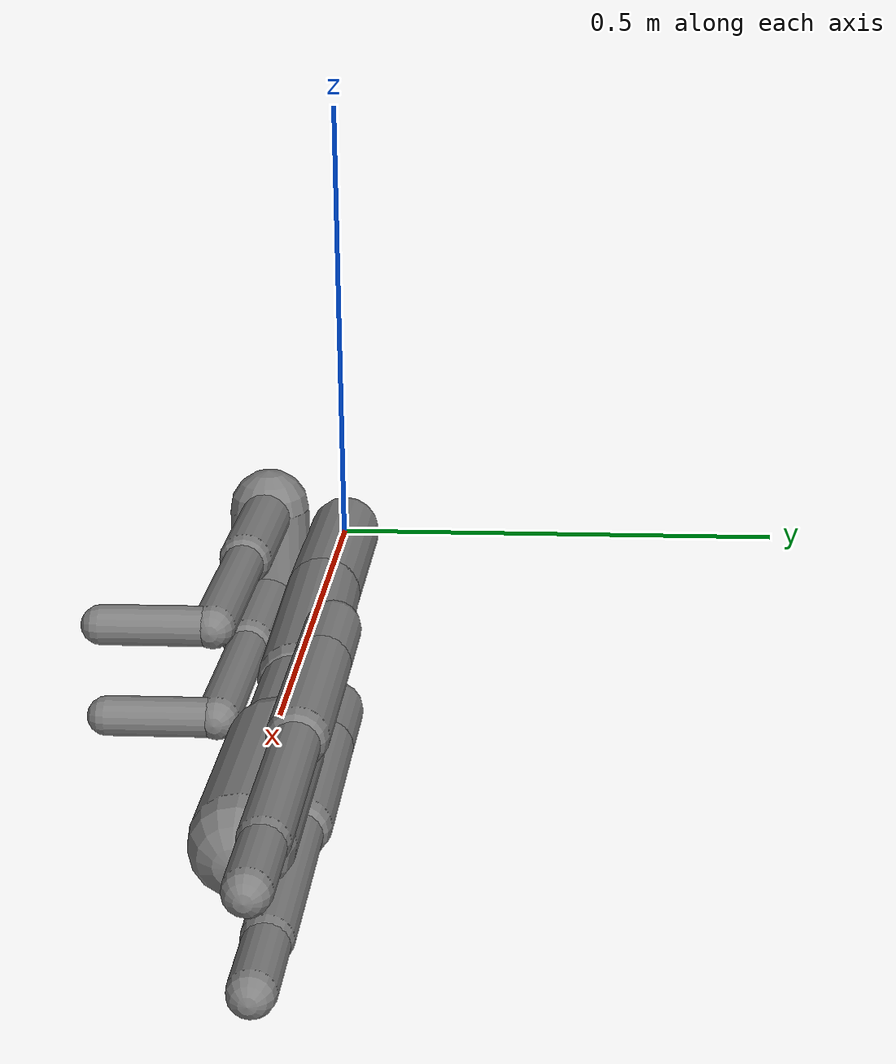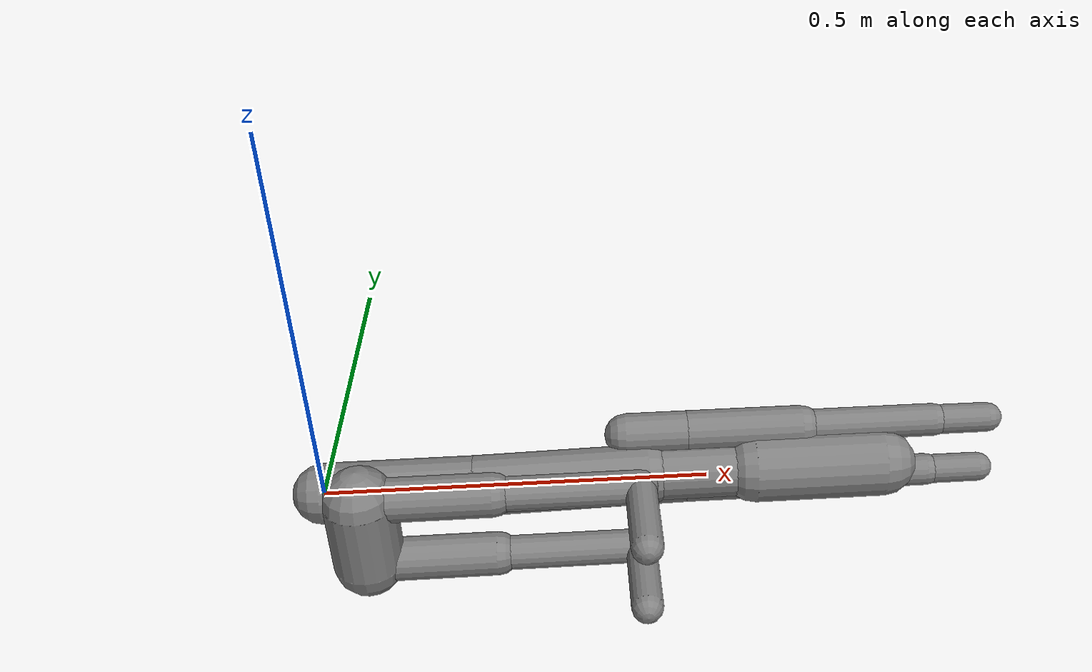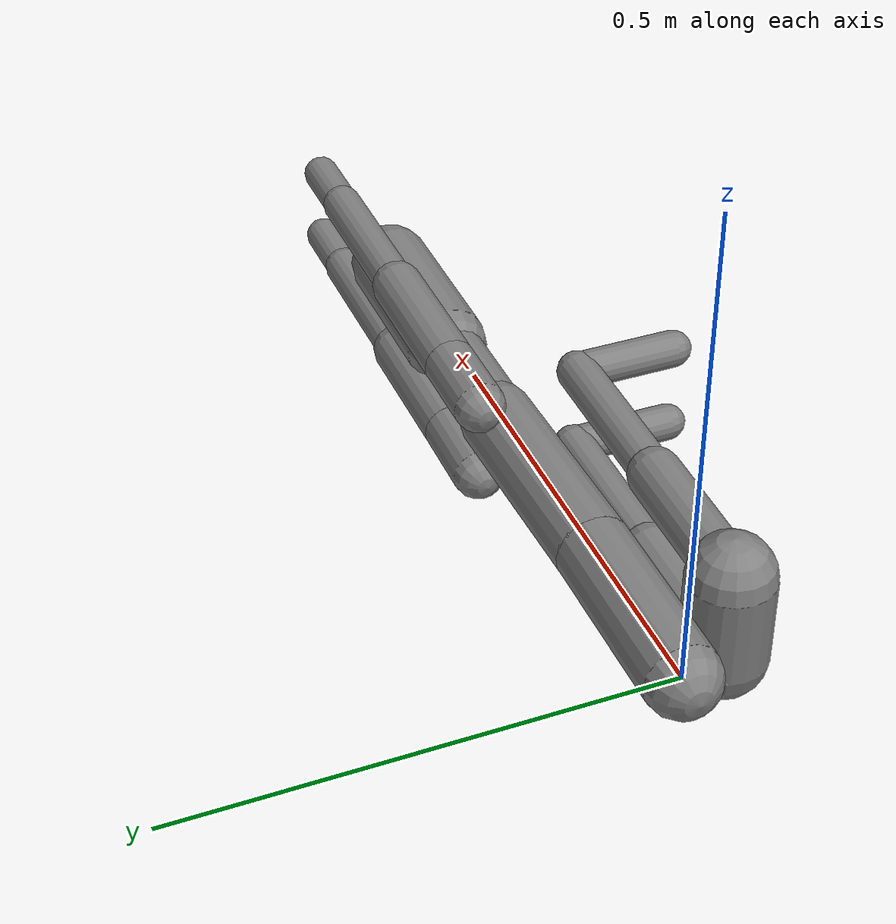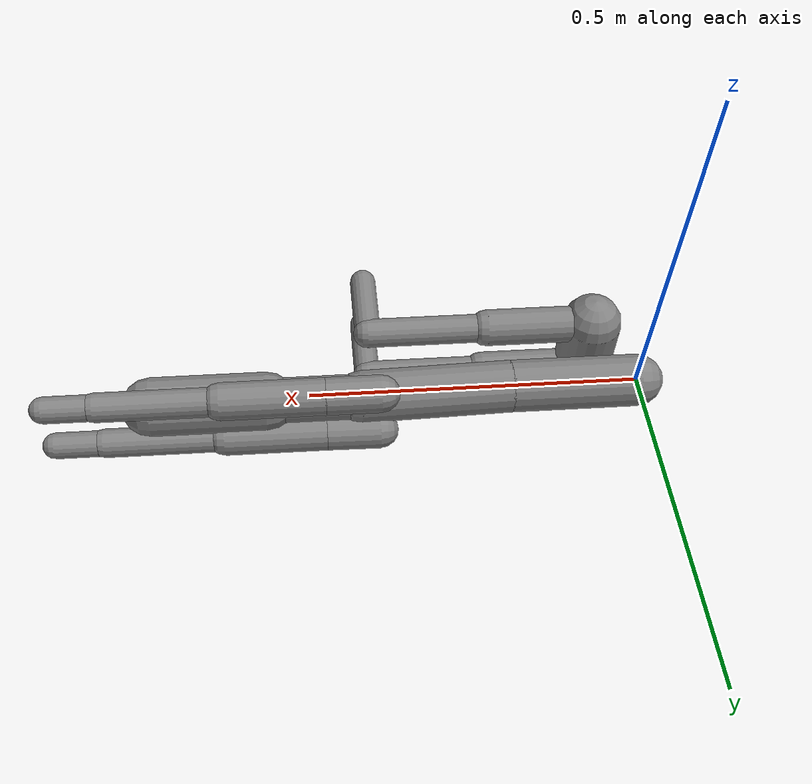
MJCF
<?xml version="1.0" ?>
<mujoco model="dog_v2">
  <compiler angle="degree" autolimits="true"/>
  <option timestep="0.005"/>
  <default>
    <geom contype="1" conaffinity="1" condim="3" density="1000"/>
    <joint limited="true" armature="0.01" damping="0.1"/>
  </default>
  <worldbody>
    <body name="trunk" pos="0 0 0">
      <freejoint name="root"/>
      <geom name="geom_trunk" type="capsule" fromto="0.0609197 -0.0780399 0.0487499 0.0609197 -0.0780397 -0.0487499" size="0.045" group="0"/>
      <body name="Spine" pos="0 0 0">
        <joint name="Spine_x" type="hinge" axis="1 0 0" pos="0 0 0" limited="false"/>
        <joint name="Spine_y" type="hinge" axis="0 1 0" pos="0 0 0" limited="false"/>
        <joint name="Spine_z" type="hinge" axis="0 0 1" pos="0 0 0" limited="false"/>
        <geom name="geom_Spine" type="capsule" fromto="0 0 0 0.19342 0 0" size="0.04" group="0"/>
        <body name="Spine1" pos="0.19342 0 0">
          <joint name="Spine1_x" type="hinge" axis="1 0 0" pos="0 0 0" limited="false"/>
          <joint name="Spine1_y" type="hinge" axis="0 1 0" pos="0 0 0" limited="false"/>
          <joint name="Spine1_z" type="hinge" axis="0 0 1" pos="0 0 0" limited="false"/>
          <geom name="geom_Spine1" type="capsule" fromto="0 0 0 0.22905 0.006108 0" size="0.04" group="0"/>
          <body name="Neck" pos="0.22905 0.006108 0">
            <joint name="Neck_x" type="hinge" axis="1 0 0" pos="0 0 0" limited="false"/>
            <joint name="Neck_y" type="hinge" axis="0 1 0" pos="0 0 0" limited="false"/>
            <joint name="Neck_z" type="hinge" axis="0 0 1" pos="0 0 0" limited="false"/>
            <geom name="geom_Neck" type="capsule" fromto="0 0 0 0.14252 0.000314335 0" size="0.035" group="0"/>
            <body name="Head" pos="0.14252 0.000314335 0">
              <joint name="Head_x" type="hinge" axis="1 0 0" pos="0 0 0" limited="false"/>
              <joint name="Head_y" type="hinge" axis="0 1 0" pos="0 0 0" limited="false"/>
              <joint name="Head_z" type="hinge" axis="0 0 1" pos="0 0 0" limited="false"/>
              <geom name="geom_Head" type="capsule" fromto="0 0 0 0.17306 0 0" size="0.045" group="0"/>
            </body>
          </body>
          <body name="LeftShoulder" pos="0.201564 0.037666 0.043774">
            <joint name="LeftShoulder_x" type="hinge" axis="1 0 0" pos="0 0 0" limited="false"/>
            <joint name="LeftShoulder_y" type="hinge" axis="0 1 0" pos="0 0 0" limited="false"/>
            <joint name="LeftShoulder_z" type="hinge" axis="0 0 1" pos="0 0 0" limited="false"/>
            <geom name="geom_LeftShoulder" type="capsule" fromto="0 0 0 0.08144 0 0" size="0.028" group="0"/>
            <body name="LeftArm" pos="0.08144 0 0">
              <joint name="LeftArm_x" type="hinge" axis="1 0 0" pos="0 0 0" limited="false"/>
              <joint name="LeftArm_y" type="hinge" axis="0 1 0" pos="0 0 0" limited="false"/>
              <joint name="LeftArm_z" type="hinge" axis="0 0 1" pos="0 0 0" limited="false"/>
              <geom name="geom_LeftArm" type="capsule" fromto="0 0 0 0.154736 0 0" size="0.028" group="0"/>
              <body name="LeftForeArm" pos="0.154736 0 0">
                <joint name="LeftForeArm_x" type="hinge" axis="1 0 0" pos="0 0 0" limited="false"/>
                <joint name="LeftForeArm_y" type="hinge" axis="0 1 0" pos="0 0 0" limited="false"/>
                <joint name="LeftForeArm_z" type="hinge" axis="0 0 1" pos="0 0 0" limited="false"/>
                <geom name="geom_LeftForeArm" type="capsule" fromto="0 0 0 0.181204 0 0" size="0.022" group="0"/>
                <body name="LeftHand" pos="0.181204 0 0">
                  <joint name="LeftHand_x" type="hinge" axis="1 0 0" pos="0 0 0" limited="false"/>
                  <joint name="LeftHand_y" type="hinge" axis="0 1 0" pos="0 0 0" limited="false"/>
                  <joint name="LeftHand_z" type="hinge" axis="0 0 1" pos="0 0 0" limited="false"/>
                  <geom name="geom_LeftHand" type="capsule" fromto="0 0 0 0.073296 0 0" size="0.02" group="0"/>
                </body>
              </body>
            </body>
          </body>
          <body name="RightShoulder" pos="0.201564 0.037666 -0.043774">
            <joint name="RightShoulder_x" type="hinge" axis="1 0 0" pos="0 0 0" limited="false"/>
            <joint name="RightShoulder_y" type="hinge" axis="0 1 0" pos="0 0 0" limited="false"/>
            <joint name="RightShoulder_z" type="hinge" axis="0 0 1" pos="0 0 0" limited="false"/>
            <geom name="geom_RightShoulder" type="capsule" fromto="0 0 0 0.08144 0 0.00154384" size="0.028" group="0"/>
            <body name="RightArm" pos="0.08144 0 0.00154384">
              <joint name="RightArm_x" type="hinge" axis="1 0 0" pos="0 0 0" limited="false"/>
              <joint name="RightArm_y" type="hinge" axis="0 1 0" pos="0 0 0" limited="false"/>
              <joint name="RightArm_z" type="hinge" axis="0 0 1" pos="0 0 0" limited="false"/>
              <geom name="geom_RightArm" type="capsule" fromto="0 0 0 0.154736 0 0" size="0.028" group="0"/>
              <body name="RightForeArm" pos="0.154736 0 0">
                <joint name="RightForeArm_x" type="hinge" axis="1 0 0" pos="0 0 0" limited="false"/>
                <joint name="RightForeArm_y" type="hinge" axis="0 1 0" pos="0 0 0" limited="false"/>
                <joint name="RightForeArm_z" type="hinge" axis="0 0 1" pos="0 0 0" limited="false"/>
                <geom name="geom_RightForeArm" type="capsule" fromto="0 0 0 0.181204 0 0" size="0.022" group="0"/>
                <body name="RightHand" pos="0.181204 0 0">
                  <joint name="RightHand_x" type="hinge" axis="1 0 0" pos="0 0 0" limited="false"/>
                  <joint name="RightHand_y" type="hinge" axis="0 1 0" pos="0 0 0" limited="false"/>
                  <joint name="RightHand_z" type="hinge" axis="0 0 1" pos="0 0 0" limited="false"/>
                  <geom name="geom_RightHand" type="capsule" fromto="0 0 0 0.073296 0 0" size="0.02" group="0"/>
                </body>
              </body>
            </body>
          </body>
        </body>
      </body>
      <body name="LeftUpLeg" pos="0.0609197 -0.0780399 0.0487499">
        <joint name="LeftUpLeg_x" type="hinge" axis="1 0 0" pos="0 0 0" limited="false"/>
        <joint name="LeftUpLeg_y" type="hinge" axis="0 1 0" pos="0 0 0" limited="false"/>
        <joint name="LeftUpLeg_z" type="hinge" axis="0 0 1" pos="0 0 0" limited="false"/>
        <geom name="geom_LeftUpLeg" type="capsule" fromto="0 0 0 0.16288 0 0" size="0.028" group="0"/>
        <body name="LeftLeg" pos="0.16288 0 0">
          <joint name="LeftLeg_x" type="hinge" axis="1 0 0" pos="0 0 0" limited="false"/>
          <joint name="LeftLeg_y" type="hinge" axis="0 1 0" pos="0 0 0" limited="false"/>
          <joint name="LeftLeg_z" type="hinge" axis="0 0 1" pos="0 0 0" limited="false"/>
          <geom name="geom_LeftLeg" type="capsule" fromto="0 0 0 0.18324 0 0" size="0.022" group="0"/>
          <body name="LeftFoot" pos="0.18324 0 0">
            <joint name="LeftFoot_x" type="hinge" axis="1 0 0" pos="0 0 0" limited="false"/>
            <joint name="LeftFoot_y" type="hinge" axis="0 1 0" pos="0 0 0" limited="false"/>
            <joint name="LeftFoot_z" type="hinge" axis="0 0 1" pos="0 0 0" limited="false"/>
            <geom name="geom_LeftFoot" type="capsule" fromto="0 0 0 0 -0.109944 0" size="0.02" group="0"/>
          </body>
        </body>
      </body>
      <body name="RightUpLeg" pos="0.0609197 -0.0780397 -0.0487499">
        <joint name="RightUpLeg_x" type="hinge" axis="1 0 0" pos="0 0 0" limited="false"/>
        <joint name="RightUpLeg_y" type="hinge" axis="0 1 0" pos="0 0 0" limited="false"/>
        <joint name="RightUpLeg_z" type="hinge" axis="0 0 1" pos="0 0 0" limited="false"/>
        <geom name="geom_RightUpLeg" type="capsule" fromto="0 0 0 0.16288 0 0" size="0.028" group="0"/>
        <body name="RightLeg" pos="0.16288 0 0">
          <joint name="RightLeg_x" type="hinge" axis="1 0 0" pos="0 0 0" limited="false"/>
          <joint name="RightLeg_y" type="hinge" axis="0 1 0" pos="0 0 0" limited="false"/>
          <joint name="RightLeg_z" type="hinge" axis="0 0 1" pos="0 0 0" limited="false"/>
          <geom name="geom_RightLeg" type="capsule" fromto="0 0 0 0.18324 0 0" size="0.022" group="0"/>
          <body name="RightFoot" pos="0.18324 0 0">
            <joint name="RightFoot_x" type="hinge" axis="1 0 0" pos="0 0 0" limited="false"/>
            <joint name="RightFoot_y" type="hinge" axis="0 1 0" pos="0 0 0" limited="false"/>
            <joint name="RightFoot_z" type="hinge" axis="0 0 1" pos="0 0 0" limited="false"/>
            <geom name="geom_RightFoot" type="capsule" fromto="0 0 0 0 -0.109944 0" size="0.02" group="0"/>
          </body>
        </body>
      </body>
      <body name="Tail" pos="0.0696003 -0.0073558 0">
        <joint name="Tail_x" type="hinge" axis="1 0 0" pos="0 0 0" limited="false"/>
        <joint name="Tail_y" type="hinge" axis="0 1 0" pos="0 0 0" limited="false"/>
        <joint name="Tail_z" type="hinge" axis="0 0 1" pos="0 0 0" limited="false"/>
        <geom name="geom_Tail" type="capsule" fromto="0 0 0 0.12216 0 0" size="0.018" group="0"/>
        <body name="Tail1" pos="0.12216 0 0">
          <joint name="Tail1_x" type="hinge" axis="1 0 0" pos="0 0 0" limited="false"/>
          <joint name="Tail1_y" type="hinge" axis="0 1 0" pos="0 0 0" limited="false"/>
          <joint name="Tail1_z" type="hinge" axis="0 0 1" pos="0 0 0" limited="false"/>
          <geom name="geom_Tail1" type="capsule" fromto="0 0 0 0.12216 0 0" size="0.018" group="0"/>
        </body>
      </body>
    </body>
  </worldbody>
  <actuator>
    <position name="Spine_x" joint="Spine_x" kp="120" kv="12" ctrlrange="-180 180" forcerange="-60 60"/>
    <position name="Spine_y" joint="Spine_y" kp="120" kv="12" ctrlrange="-180 180" forcerange="-60 60"/>
    <position name="Spine_z" joint="Spine_z" kp="120" kv="12" ctrlrange="-180 180" forcerange="-60 60"/>
    <position name="Spine1_x" joint="Spine1_x" kp="120" kv="12" ctrlrange="-180 180" forcerange="-60 60"/>
    <position name="Spine1_y" joint="Spine1_y" kp="120" kv="12" ctrlrange="-180 180" forcerange="-60 60"/>
    <position name="Spine1_z" joint="Spine1_z" kp="120" kv="12" ctrlrange="-180 180" forcerange="-60 60"/>
    <position name="Neck_x" joint="Neck_x" kp="40" kv="4" ctrlrange="-180 180" forcerange="-20 20"/>
    <position name="Neck_y" joint="Neck_y" kp="40" kv="4" ctrlrange="-180 180" forcerange="-20 20"/>
    <position name="Neck_z" joint="Neck_z" kp="40" kv="4" ctrlrange="-180 180" forcerange="-20 20"/>
    <position name="Head_x" joint="Head_x" kp="20" kv="2" ctrlrange="-180 180" forcerange="-10 10"/>
    <position name="Head_y" joint="Head_y" kp="20" kv="2" ctrlrange="-180 180" forcerange="-10 10"/>
    <position name="Head_z" joint="Head_z" kp="20" kv="2" ctrlrange="-180 180" forcerange="-10 10"/>
    <position name="LeftShoulder_x" joint="LeftShoulder_x" kp="80" kv="8" ctrlrange="-180 180" forcerange="-40 40"/>
    <position name="LeftShoulder_y" joint="LeftShoulder_y" kp="80" kv="8" ctrlrange="-180 180" forcerange="-40 40"/>
    <position name="LeftShoulder_z" joint="LeftShoulder_z" kp="80" kv="8" ctrlrange="-180 180" forcerange="-40 40"/>
    <position name="LeftArm_x" joint="LeftArm_x" kp="80" kv="8" ctrlrange="-180 180" forcerange="-40 40"/>
    <position name="LeftArm_y" joint="LeftArm_y" kp="80" kv="8" ctrlrange="-180 180" forcerange="-40 40"/>
    <position name="LeftArm_z" joint="LeftArm_z" kp="80" kv="8" ctrlrange="-180 180" forcerange="-40 40"/>
    <position name="LeftForeArm_x" joint="LeftForeArm_x" kp="60" kv="6" ctrlrange="-180 180" forcerange="-30 30"/>
    <position name="LeftForeArm_y" joint="LeftForeArm_y" kp="60" kv="6" ctrlrange="-180 180" forcerange="-30 30"/>
    <position name="LeftForeArm_z" joint="LeftForeArm_z" kp="60" kv="6" ctrlrange="-180 180" forcerange="-30 30"/>
    <position name="LeftHand_x" joint="LeftHand_x" kp="30" kv="3" ctrlrange="-180 180" forcerange="-15 15"/>
    <position name="LeftHand_y" joint="LeftHand_y" kp="30" kv="3" ctrlrange="-180 180" forcerange="-15 15"/>
    <position name="LeftHand_z" joint="LeftHand_z" kp="30" kv="3" ctrlrange="-180 180" forcerange="-15 15"/>
    <position name="RightShoulder_x" joint="RightShoulder_x" kp="80" kv="8" ctrlrange="-180 180" forcerange="-40 40"/>
    <position name="RightShoulder_y" joint="RightShoulder_y" kp="80" kv="8" ctrlrange="-180 180" forcerange="-40 40"/>
    <position name="RightShoulder_z" joint="RightShoulder_z" kp="80" kv="8" ctrlrange="-180 180" forcerange="-40 40"/>
    <position name="RightArm_x" joint="RightArm_x" kp="80" kv="8" ctrlrange="-180 180" forcerange="-40 40"/>
    <position name="RightArm_y" joint="RightArm_y" kp="80" kv="8" ctrlrange="-180 180" forcerange="-40 40"/>
    <position name="RightArm_z" joint="RightArm_z" kp="80" kv="8" ctrlrange="-180 180" forcerange="-40 40"/>
    <position name="RightForeArm_x" joint="RightForeArm_x" kp="60" kv="6" ctrlrange="-180 180" forcerange="-30 30"/>
    <position name="RightForeArm_y" joint="RightForeArm_y" kp="60" kv="6" ctrlrange="-180 180" forcerange="-30 30"/>
    <position name="RightForeArm_z" joint="RightForeArm_z" kp="60" kv="6" ctrlrange="-180 180" forcerange="-30 30"/>
    <position name="RightHand_x" joint="RightHand_x" kp="30" kv="3" ctrlrange="-180 180" forcerange="-15 15"/>
    <position name="RightHand_y" joint="RightHand_y" kp="30" kv="3" ctrlrange="-180 180" forcerange="-15 15"/>
    <position name="RightHand_z" joint="RightHand_z" kp="30" kv="3" ctrlrange="-180 180" forcerange="-15 15"/>
    <position name="LeftUpLeg_x" joint="LeftUpLeg_x" kp="80" kv="8" ctrlrange="-180 180" forcerange="-40 40"/>
    <position name="LeftUpLeg_y" joint="LeftUpLeg_y" kp="80" kv="8" ctrlrange="-180 180" forcerange="-40 40"/>
    <position name="LeftUpLeg_z" joint="LeftUpLeg_z" kp="80" kv="8" ctrlrange="-180 180" forcerange="-40 40"/>
    <position name="LeftLeg_x" joint="LeftLeg_x" kp="60" kv="6" ctrlrange="-180 180" forcerange="-30 30"/>
    <position name="LeftLeg_y" joint="LeftLeg_y" kp="60" kv="6" ctrlrange="-180 180" forcerange="-30 30"/>
    <position name="LeftLeg_z" joint="LeftLeg_z" kp="60" kv="6" ctrlrange="-180 180" forcerange="-30 30"/>
    <position name="LeftFoot_x" joint="LeftFoot_x" kp="30" kv="3" ctrlrange="-180 180" forcerange="-15 15"/>
    <position name="LeftFoot_y" joint="LeftFoot_y" kp="30" kv="3" ctrlrange="-180 180" forcerange="-15 15"/>
    <position name="LeftFoot_z" joint="LeftFoot_z" kp="30" kv="3" ctrlrange="-180 180" forcerange="-15 15"/>
    <position name="RightUpLeg_x" joint="RightUpLeg_x" kp="80" kv="8" ctrlrange="-180 180" forcerange="-40 40"/>
    <position name="RightUpLeg_y" joint="RightUpLeg_y" kp="80" kv="8" ctrlrange="-180 180" forcerange="-40 40"/>
    <position name="RightUpLeg_z" joint="RightUpLeg_z" kp="80" kv="8" ctrlrange="-180 180" forcerange="-40 40"/>
    <position name="RightLeg_x" joint="RightLeg_x" kp="60" kv="6" ctrlrange="-180 180" forcerange="-30 30"/>
    <position name="RightLeg_y" joint="RightLeg_y" kp="60" kv="6" ctrlrange="-180 180" forcerange="-30 30"/>
    <position name="RightLeg_z" joint="RightLeg_z" kp="60" kv="6" ctrlrange="-180 180" forcerange="-30 30"/>
    <position name="RightFoot_x" joint="RightFoot_x" kp="30" kv="3" ctrlrange="-180 180" forcerange="-15 15"/>
    <position name="RightFoot_y" joint="RightFoot_y" kp="30" kv="3" ctrlrange="-180 180" forcerange="-15 15"/>
    <position name="RightFoot_z" joint="RightFoot_z" kp="30" kv="3" ctrlrange="-180 180" forcerange="-15 15"/>
    <position name="Tail_x" joint="Tail_x" kp="2" kv="0.2" ctrlrange="-180 180" forcerange="-1 1"/>
    <position name="Tail_y" joint="Tail_y" kp="2" kv="0.2" ctrlrange="-180 180" forcerange="-1 1"/>
    <position name="Tail_z" joint="Tail_z" kp="2" kv="0.2" ctrlrange="-180 180" forcerange="-1 1"/>
    <position name="Tail1_x" joint="Tail1_x" kp="2" kv="0.2" ctrlrange="-180 180" forcerange="-1 1"/>
    <position name="Tail1_y" joint="Tail1_y" kp="2" kv="0.2" ctrlrange="-180 180" forcerange="-1 1"/>
    <position name="Tail1_z" joint="Tail1_z" kp="2" kv="0.2" ctrlrange="-180 180" forcerange="-1 1"/>
  </actuator>
</mujoco>
